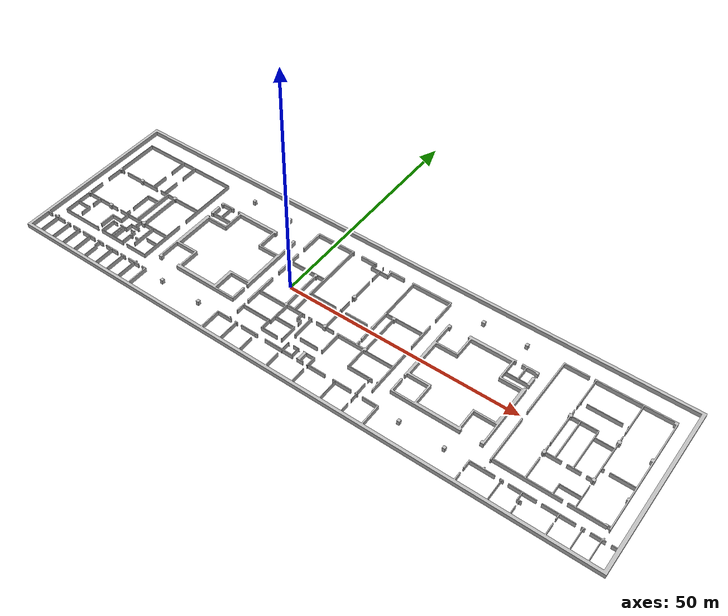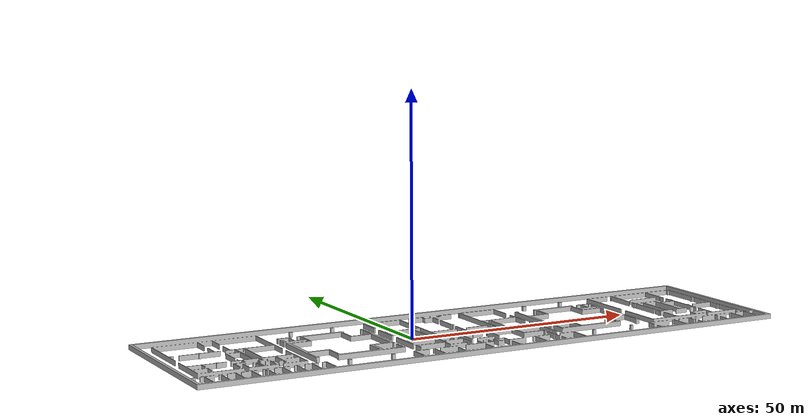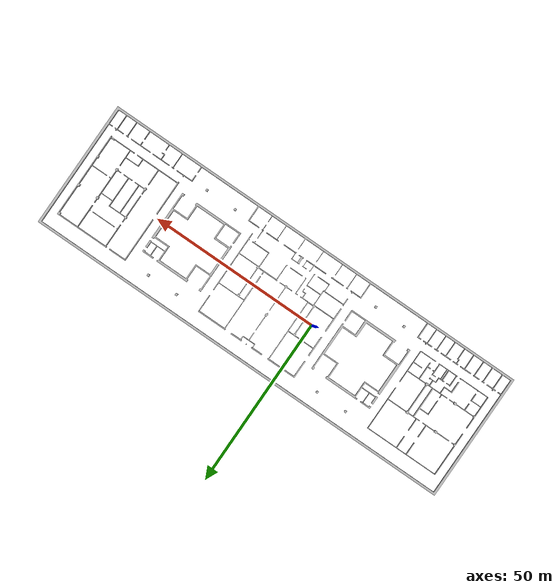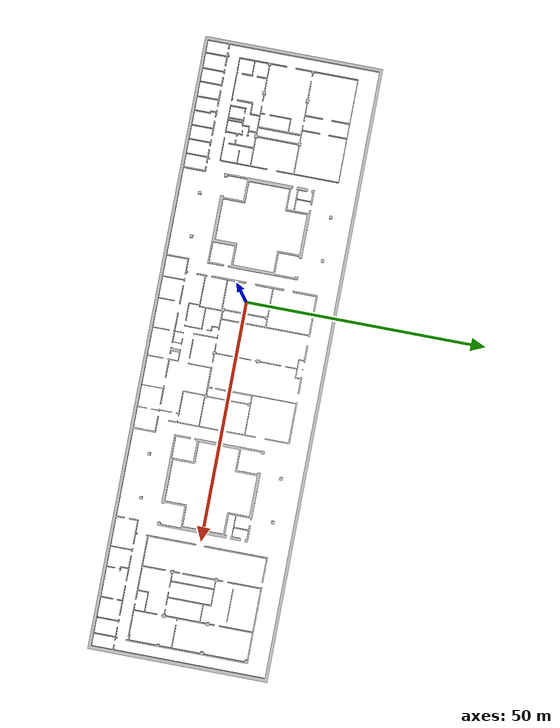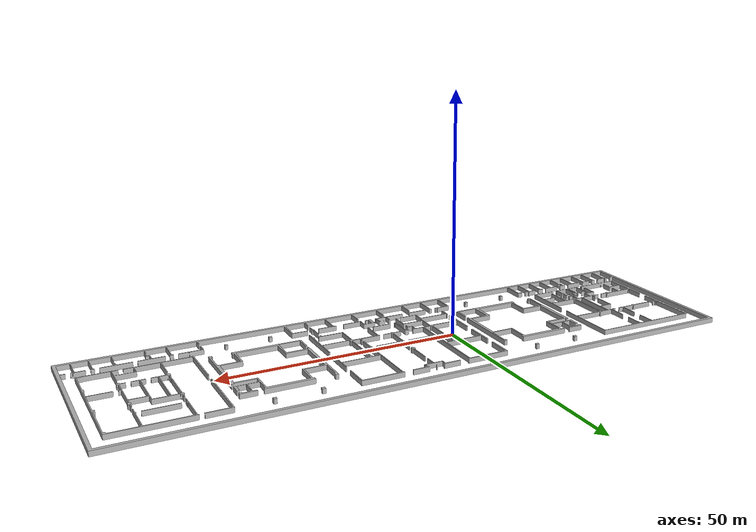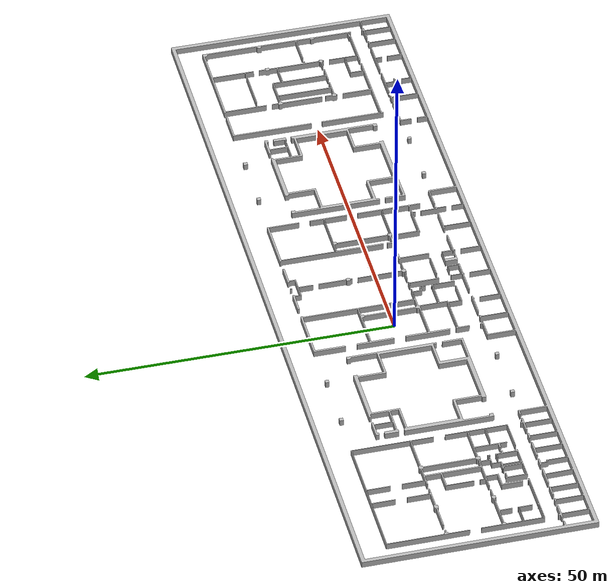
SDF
<?xml version="1.0"?>
<sdf version="1.6">
  <model name="hh2">
    <link name="base_link">
      <visual name="visual">
        <geometry>
          <mesh>
            <uri>model://hh2/meshes/hh2_v2.stl</uri>
          </mesh>
        </geometry>
      </visual>
      <collision name="collision">
        <geometry>
          <mesh>
            <uri>model://hh2/meshes/hh2_v2.stl</uri>
          </mesh>
        </geometry>
      </collision>
      <pose>0 0 0 0 0 0</pose>
      <inertial>
        <mass>1.0</mass>
        <inertia>
          <ixx>1.0</ixx>
          <iyy>1.0</iyy>
          <izz>1.0</izz>
        </inertia>
      </inertial>
      <kinematic>true</kinematic>
    </link>
  </model>
</sdf>
